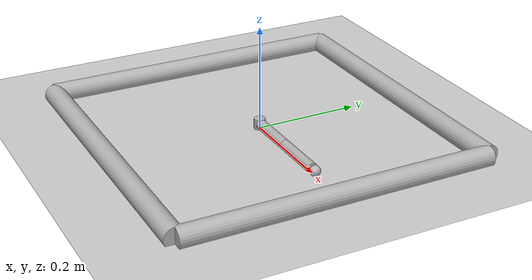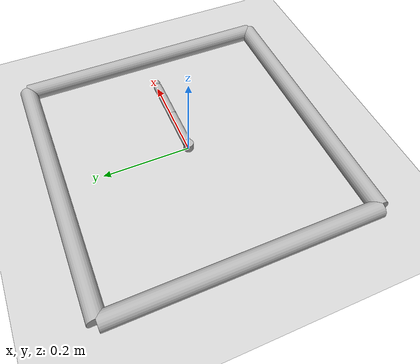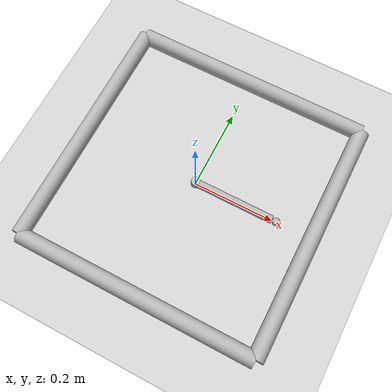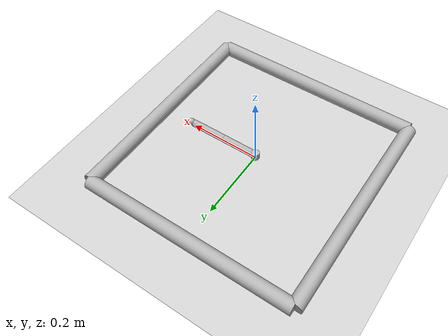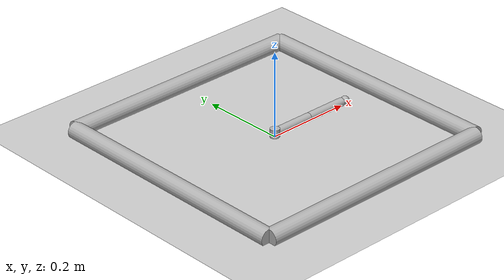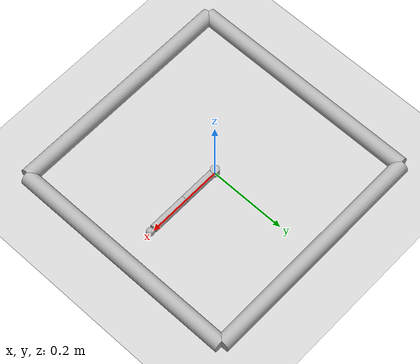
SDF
<?xml version="1.0" ?>
<sdf version="1.8">
  <world name="reacher">
    <physics name="10ms" type="ignored">
      <max_step_size>0.01</max_step_size>
      <real_time_update_rate>0</real_time_update_rate>
    </physics>
    <plugin filename="gz-sim-physics-system"           name="gz::sim::systems::Physics"/>
    <plugin filename="gz-sim-contact-system"           name="gz::sim::systems::Contact"/>
    <plugin filename="gz-sim-sensors-system"           name="gz::sim::systems::Sensors">
      <render_engine>ogre2</render_engine>
    </plugin>
    <plugin filename="gz-sim-scene-broadcaster-system" name="gz::sim::systems::SceneBroadcaster"/>
    <plugin filename="gz-sim-user-commands-system"     name="gz::sim::systems::UserCommands"/>

    <plugin
      filename="gz-sim-python-system-loader-system"
      name="gz::sim::systems::PythonSystemLoader">
      <module_name>reacher_learner</module_name>
      <agent_name>reacher</agent_name>
      <frame_skip>5</frame_skip>
    </plugin>

    <light name="sun" type="directional">
      <cast_shadows>true</cast_shadows>
      <pose>0 0 10 0 0 0</pose>
      <diffuse>0.8 0.8 0.8 1</diffuse>
      <specular>0.2 0.2 0.2 1</specular>
      <direction>-0.5 0.1 -0.9</direction>
    </light>

    <model name="ground_plane">
      <static>true</static>
      <link name="link">
        <collision name="collision">
          <geometry><plane><normal>0 0 1</normal><size>100 100</size></plane></geometry>
        </collision>
        <visual name="visual">
          <geometry><plane><normal>0 0 1</normal><size>100 100</size></plane></geometry>
          <material>
            <ambient>0.8 0.8 0.8 1</ambient>
            <diffuse>0.8 0.8 0.8 1</diffuse>
            <specular>0.8 0.8 0.8 1</specular>
          </material>
        </visual>
      </link>
    </model>

    <model name="reacher">
      <pose>0 0 0.0 0 0 0</pose>
      <include merge="true">
        <uri>package://gazebo_gymnasium_resources/models/reacher</uri>
      </include>
    </model>
  </world>
</sdf>

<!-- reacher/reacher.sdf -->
<sdf version='1.11'>
  <model name='reacher'>
    <link name='base'>
      <inertial>
        <pose>0 0 0 0 0 0</pose>
        <mass>0.0030599999999999998</mass>
        <inertia>
          <ixx>1e-08</ixx>
          <ixy>0</ixy>
          <ixz>0</ixz>
          <iyy>1e-08</iyy>
          <iyz>0</iyz>
          <izz>1e-08</izz>
        </inertia>
      </inertial>
      <collision name='base_fixed_joint_lump__root_collision'>
        <pose>0 0 0.01 0 0 0</pose>
        <geometry>
          <cylinder>
            <length>0.02</length>
            <radius>0.010999999999999999</radius>
          </cylinder>
        </geometry>
      </collision>
      <visual name='base_fixed_joint_lump__root_visual'>
        <pose>0 0 0.01 0 0 0</pose>
        <geometry>
          <cylinder>
            <length>0.02</length>
            <radius>0.010999999999999999</radius>
          </cylinder>
        </geometry>
              <material>
          <ambient>0.5 0.5 0.5 1</ambient>
          <diffuse>0.7 0.7 0.7 1</diffuse>
          <specular>0.1 0.1 0.1 1</specular>
        </material>
      </visual>
      <collision name='base_fixed_joint_lump__sideE_collision_1'>
        <pose>0.29999999999999999 0 0.01 -1.5708 0 0</pose>
        <geometry>
          <cylinder>
            <length>0.59999999999999998</length>
            <radius>0.02</radius>
          </cylinder>
        </geometry>
      </collision>
      <visual name='base_fixed_joint_lump__sideE_1_visual'>
        <pose>0.29999999999999999 0 0.01 -1.5708 0 0</pose>
        <geometry>
          <cylinder>
            <length>0.59999999999999998</length>
            <radius>0.02</radius>
          </cylinder>
        </geometry>
              <material>
          <ambient>0.5 0.5 0.5 1</ambient>
          <diffuse>0.7 0.7 0.7 1</diffuse>
          <specular>0.1 0.1 0.1 1</specular>
        </material>
      </visual>
      <collision name='base_fixed_joint_lump__sideN_collision_2'>
        <pose>0 0.29999999999999999 0.01 0 1.5707963267948966 0</pose>
        <geometry>
          <cylinder>
            <length>0.59999999999999998</length>
            <radius>0.02</radius>
          </cylinder>
        </geometry>
      </collision>
      <visual name='base_fixed_joint_lump__sideN_2_visual'>
        <pose>0 0.29999999999999999 0.01 0 1.5707963267948966 0</pose>
        <geometry>
          <cylinder>
            <length>0.59999999999999998</length>
            <radius>0.02</radius>
          </cylinder>
        </geometry>
              <material>
          <ambient>0.5 0.5 0.5 1</ambient>
          <diffuse>0.7 0.7 0.7 1</diffuse>
          <specular>0.1 0.1 0.1 1</specular>
        </material>
      </visual>
      <collision name='base_fixed_joint_lump__sideS_collision_3'>
        <pose>0 -0.29999999999999999 0.01 0 1.5707963267948966 0</pose>
        <geometry>
          <cylinder>
            <length>0.59999999999999998</length>
            <radius>0.02</radius>
          </cylinder>
        </geometry>
      </collision>
      <visual name='base_fixed_joint_lump__sideS_3_visual'>
        <pose>0 -0.29999999999999999 0.01 0 1.5707963267948966 0</pose>
        <geometry>
          <cylinder>
            <length>0.59999999999999998</length>
            <radius>0.02</radius>
          </cylinder>
        </geometry>
              <material>
          <ambient>0.5 0.5 0.5 1</ambient>
          <diffuse>0.7 0.7 0.7 1</diffuse>
          <specular>0.1 0.1 0.1 1</specular>
        </material>
      </visual>
      <collision name='base_fixed_joint_lump__sideW_collision_4'>
        <pose>-0.29999999999999999 0 0.01 -1.5708 0 0</pose>
        <geometry>
          <cylinder>
            <length>0.59999999999999998</length>
            <radius>0.02</radius>
          </cylinder>
        </geometry>
      </collision>
      <visual name='base_fixed_joint_lump__sideW_4_visual'>
        <pose>-0.29999999999999999 0 0.01 -1.5708 0 0</pose>
        <geometry>
          <cylinder>
            <length>0.59999999999999998</length>
            <radius>0.02</radius>
          </cylinder>
        </geometry>
              <material>
          <ambient>0.5 0.5 0.5 1</ambient>
          <diffuse>0.7 0.7 0.7 1</diffuse>
          <specular>0.1 0.1 0.1 1</specular>
        </material>
      </visual>
      <collision name='base_fixed_joint_lump__target_collision_5'>
        <pose>0 0 0 0 0 0</pose>
        <geometry>
          <sphere>
            <radius>0.0089999999999999993</radius>
          </sphere>
        </geometry>
      </collision>
      <visual name='base_fixed_joint_lump__target_5_visual'>
        <pose>0 0 0 0 0 0</pose>
        <geometry>
          <sphere>
            <radius>0.0089999999999999993</radius>
          </sphere>
        </geometry>
              <material>
          <ambient>0.5 0.5 0.5 1</ambient>
          <diffuse>0.7 0.7 0.7 1</diffuse>
          <specular>0.1 0.1 0.1 1</specular>
        </material>
      </visual>
    </link>
    <joint name='joint0' type='revolute'>
      <pose relative_to='base'>0 0 0.01 0 0 0</pose>
      <parent>base</parent>
      <child>arm0</child>
      <axis>
        <xyz>0 0 1</xyz>
        <limit>
          <lower>-inf</lower>
          <upper>inf</upper>
        </limit>
        <dynamics>
          <damping>1</damping>
          <friction>0.0001</friction>
          <spring_reference>0</spring_reference>
          <spring_stiffness>0</spring_stiffness>
        </dynamics>
      </axis>
    </joint>
    <link name='arm0'>
      <pose relative_to='joint0'>0 0 0 0 0 0</pose>
      <inertial>
        <pose>0.049998595545068962 0 0 0 0 0</pose>
        <mass>0.035601000000000001</mass>
        <inertia>
          <ixx>1.0000000000000001e-09</ixx>
          <ixy>0</ixy>
          <ixz>0</ixz>
          <iyy>4.0003499929777239e-05</iyy>
          <iyz>0</iyz>
          <izz>4.0003499929777239e-05</izz>
        </inertia>
      </inertial>
      <collision name='arm0_fixed_joint_lump__body0_collision'>
        <pose>0.050000000000000003 0 0 0 1.5707963267948966 0</pose>
        <geometry>
          <cylinder>
            <length>0.10000000000000001</length>
            <radius>0.01</radius>
          </cylinder>
        </geometry>
      </collision>
      <visual name='arm0_fixed_joint_lump__body0_visual'>
        <pose>0.050000000000000003 0 0 0 1.5707963267948966 0</pose>
        <geometry>
          <cylinder>
            <length>0.10000000000000001</length>
            <radius>0.01</radius>
          </cylinder>
        </geometry>
              <material>
          <ambient>0.5 0.5 0.5 1</ambient>
          <diffuse>0.7 0.7 0.7 1</diffuse>
          <specular>0.1 0.1 0.1 1</specular>
        </material>
      </visual>
    </link>
    <joint name='joint1' type='revolute'>
      <pose relative_to='arm0'>0.10000000000000001 0 0 0 0 0</pose>
      <parent>arm0</parent>
      <child>arm1</child>
      <axis>
        <xyz>0 0 1</xyz>
        <limit>
          <lower>-3</lower>
          <upper>3</upper>
          <effort>0</effort>
          <velocity>0</velocity>
        </limit>
        <dynamics>
          <damping>1</damping>
          <friction>0.0001</friction>
          <spring_reference>0</spring_reference>
          <spring_stiffness>0</spring_stiffness>
        </dynamics>
      </axis>
    </joint>
    <link name='arm1'>
      <pose relative_to='joint1'>0 0 0 0 0 0</pose>
      <inertial>
        <pose>0.056316755045110703 0 0 0 0 0</pose>
        <mass>0.039791</mass>
        <inertia>
          <ixx>1.0000000000000001e-09</ixx>
          <ixy>0</ixy>
          <ixz>0</ixz>
          <iyy>5.3499783619411422e-05</iyy>
          <iyz>0</iyz>
          <izz>5.3499783619411422e-05</izz>
        </inertia>
      </inertial>
      <collision name='arm1_fixed_joint_lump__body1_collision'>
        <pose>0.050000000000000003 0 0 0 1.5707963267948966 0</pose>
        <geometry>
          <cylinder>
            <length>0.10000000000000001</length>
            <radius>0.01</radius>
          </cylinder>
        </geometry>
      </collision>
      <visual name='arm1_fixed_joint_lump__body1_visual'>
        <pose>0.050000000000000003 0 0 0 1.5707963267948966 0</pose>
        <geometry>
          <cylinder>
            <length>0.10000000000000001</length>
            <radius>0.01</radius>
          </cylinder>
        </geometry>
              <material>
          <ambient>0.5 0.5 0.5 1</ambient>
          <diffuse>0.7 0.7 0.7 1</diffuse>
          <specular>0.1 0.1 0.1 1</specular>
        </material>
      </visual>
      <collision name='arm1_fixed_joint_lump__fingertip_collision_1'>
        <pose>0.11 0 0 0 0 0</pose>
        <geometry>
          <sphere>
            <radius>0.01</radius>
          </sphere>
        </geometry>
      </collision>
      <visual name='arm1_fixed_joint_lump__fingertip_1_visual'>
        <pose>0.11 0 0 0 0 0</pose>
        <geometry>
          <sphere>
            <radius>0.01</radius>
          </sphere>
        </geometry>
              <material>
          <ambient>0.5 0.5 0.5 1</ambient>
          <diffuse>0.7 0.7 0.7 1</diffuse>
          <specular>0.1 0.1 0.1 1</specular>
        </material>
      </visual>
    </link>

    <plugin
      filename="gz-sim-apply-joint-force-system"
      name="gz::sim::systems::ApplyJointForce">
      <joint_name>joint0</joint_name>
    </plugin>
    <plugin
      filename="gz-sim-apply-joint-force-system"
      name="gz::sim::systems::ApplyJointForce">
      <joint_name>joint1</joint_name>
    </plugin>
    <plugin
      filename="gz-sim-joint-state-publisher-system"
      name="gz::sim::systems::JointStatePublisher">
      <joint_name>joint0</joint_name>
      <joint_name>joint1</joint_name>
    </plugin>
</model>
</sdf>
